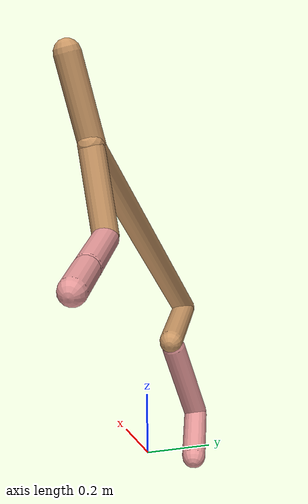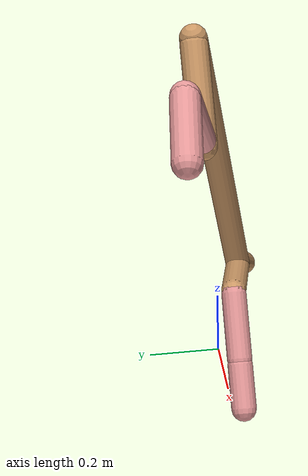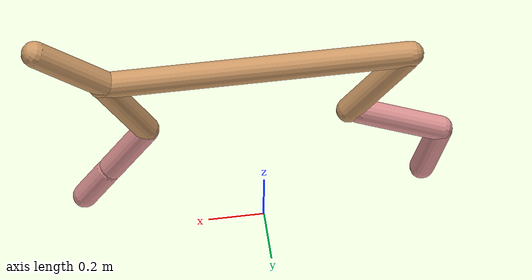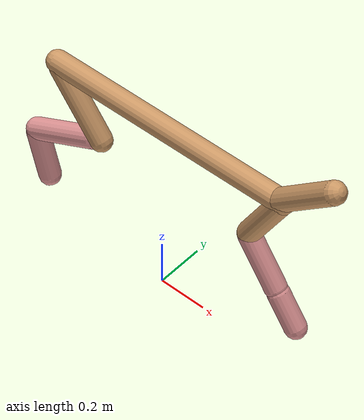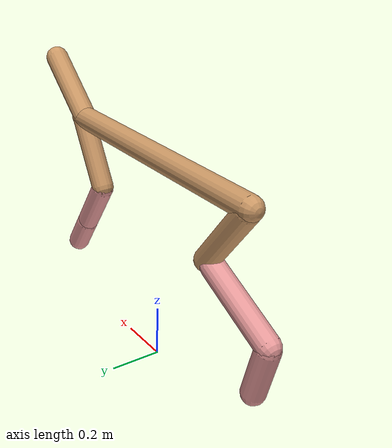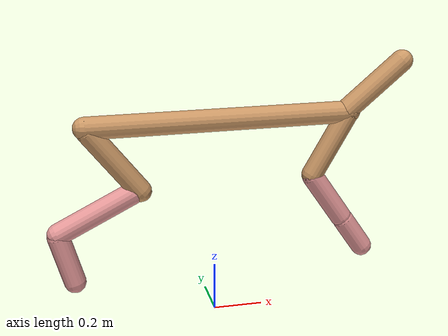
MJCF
<mujoco model="cheetah">
  <compiler angle="radian" coordinate="local" inertiafromgeom="true" settotalmass="14" />
  <default>
    <joint armature=".1" damping=".01" limited="true" solimplimit="0 .8 .03" solreflimit=".02 1" stiffness="8" />
    <geom conaffinity="0" condim="3" contype="1" friction="0.8 .1 .1" rgba="0.8 0.6 .4 1" solimp="0.0 0.8 0.01" solref="0.02 1" />
    <motor ctrllimited="true" ctrlrange="-1 1" />
  </default>
  <size nstack="300000" nuser_geom="1" />
  <option gravity="0 0 -9.81" timestep="0.01" />
  <worldbody>
    <body name="torso" pos="0.0 0.0 0.8152992135284838">
      <joint armature="0" axis="1 0 0" damping="0" limited="false" name="ignorex" pos="0 0 0" stiffness="0" type="slide" />
      <joint armature="0" axis="0 0 1" damping="0" limited="false" name="ignorez" pos="0 0 0" stiffness="0" type="slide" />
      <joint armature="0" axis="0 1 0" damping="0" limited="false" name="ignorey" pos="0 0 0" stiffness="0" type="hinge" />
      <geom fromto="-0.5 0.0 0.0 0.5571779616362639 0.0 0.0" name="torso" size="0.04458472640452575" type="capsule" />
      <geom axisangle="0 1 0 .87" name="head" pos="0.6571779616362637 0.0 0.1" size="0.04493539955238482 0.15" type="capsule" />

      <body name="bthigh" pos="-.5 0 0">
        <joint axis="0 1 0" damping="6" name="bthigh" pos="0 0 0" range="-.52 1.05" stiffness="240" type="hinge" />
        <geom axisangle="0 1 0 -3.8" name="bthigh" pos="0.10863845747868164 0.0 -0.14122999472228615" size="0.04429616384283474 0.15916812369629674" type="capsule" />
        <body name="bshin" pos="0.17727691495736328 0.0 -0.2724599894445723">
          <joint axis="0 1 0" damping="4.5" name="bshin" pos="0 0 0" range="-.785 .785" stiffness="180" type="hinge" />
          <geom axisangle="0 1 0 -2.03" name="bshin" pos="-0.1531093328407773 0.0 -0.07655466642038865" rgba="0.9 0.6 0.6 1" size="0.04429616384283474 0.1646566796858242" type="capsule" />
          <body name="bfoot" pos="-0.3062186656815546 0.0 -0.1531093328407773">
            <joint axis="0 1 0" damping="3" name="bfoot" pos="0 0 0" range="-.4 .785" stiffness="120" type="hinge" />
            <geom axisangle="0 1 0 -.27" name="bfoot" pos="0.03271384585372287 0.0 -0.1057747682603706" rgba="0.9 0.6 0.6 1" size="0.04429616384283474 0.10318485260311651" type="capsule" />
            <inertial mass="10" />
          </body>
        </body>
      </body>
      <body name="fthigh" pos="0.5571779616362638 0.0 0.0">
        <joint axis="0 1 0" damping="4.5" name="fthigh" pos="0 0 0" range="-1.5 0.8" stiffness="180" type="hinge" />
        <geom axisangle="0 1 0 .52" name="fthigh" pos="-0.07584206138566124 0.0 -0.13001496237541924" size="0.04359217250894843 0.1445943586547466" type="capsule" />
        <body name="fshin" pos="-0.15168412277132248 0.0 -0.26002992475083847">
          <joint axis="0 1 0" damping="3" name="fshin" pos="0 0 0" range="-1.2 1.1" stiffness="120" type="hinge" />
          <geom axisangle="0 1 0 -.6" name="fshin" pos="0.07041029377327217 0.0 -0.09749117599376145" rgba="0.9 0.6 0.6 1" size="0.04359217250894843 0.11524061667220403" type="capsule" />
          <body name="ffoot" pos="0.14082058754654433 0.0 -0.1949823519875229">
            <joint axis="0 1 0" damping="1.5" name="ffoot" pos="0 0 0" range="-3.1 -0.3" stiffness="60" type="hinge" />
            <geom axisangle="0 1 0 -.6" name="ffoot" pos="0.0482998618205082 0.0 -0.0751331183874572" rgba="0.9 0.6 0.6 1" size="0.04359217250894843 0.076102294028814" type="capsule" />
            <inertial mass="10" />
          </body>
        </body>
      </body>
    </body>
  </worldbody>
  <actuator>
    <motor gear="120" joint="bthigh" name="bthigh" />
    <motor gear="90" joint="bshin" name="bshin" />
    <motor gear="60" joint="bfoot" name="bfoot" />
    <motor gear="120" joint="fthigh" name="fthigh" />
    <motor gear="60" joint="fshin" name="fshin" />
    <motor gear="30" joint="ffoot" name="ffoot" />
  </actuator>
</mujoco>
